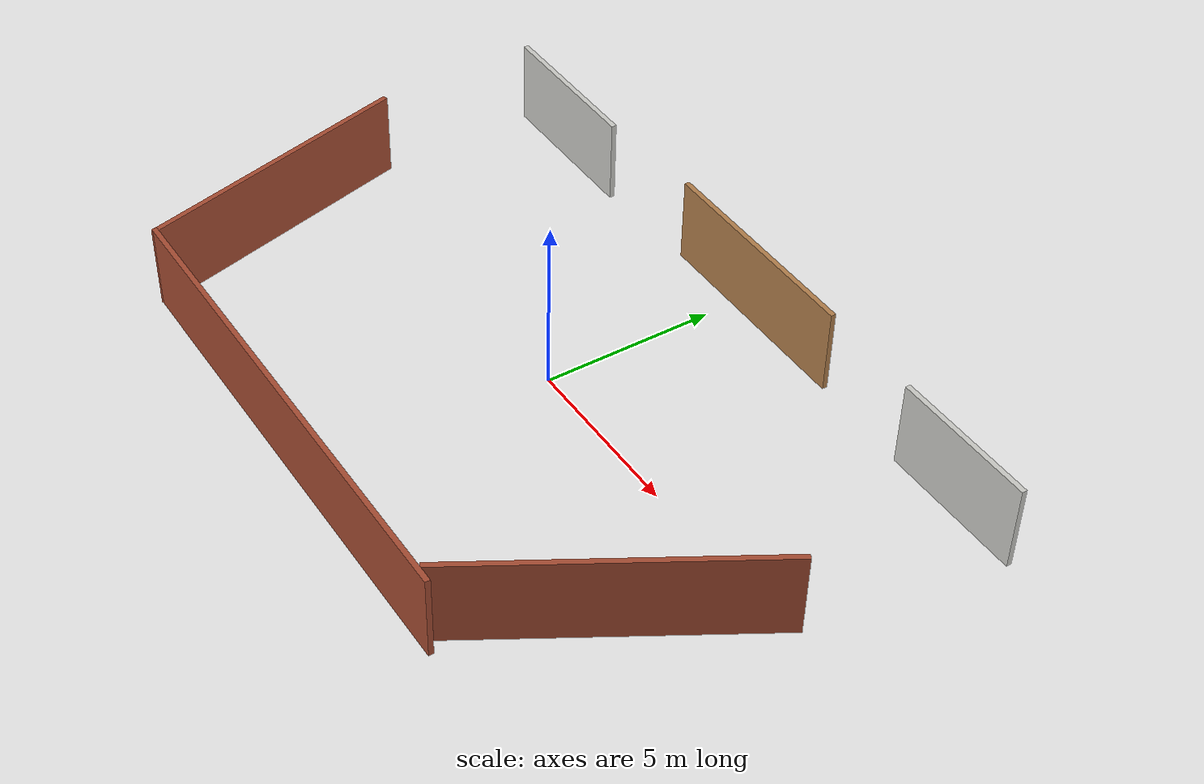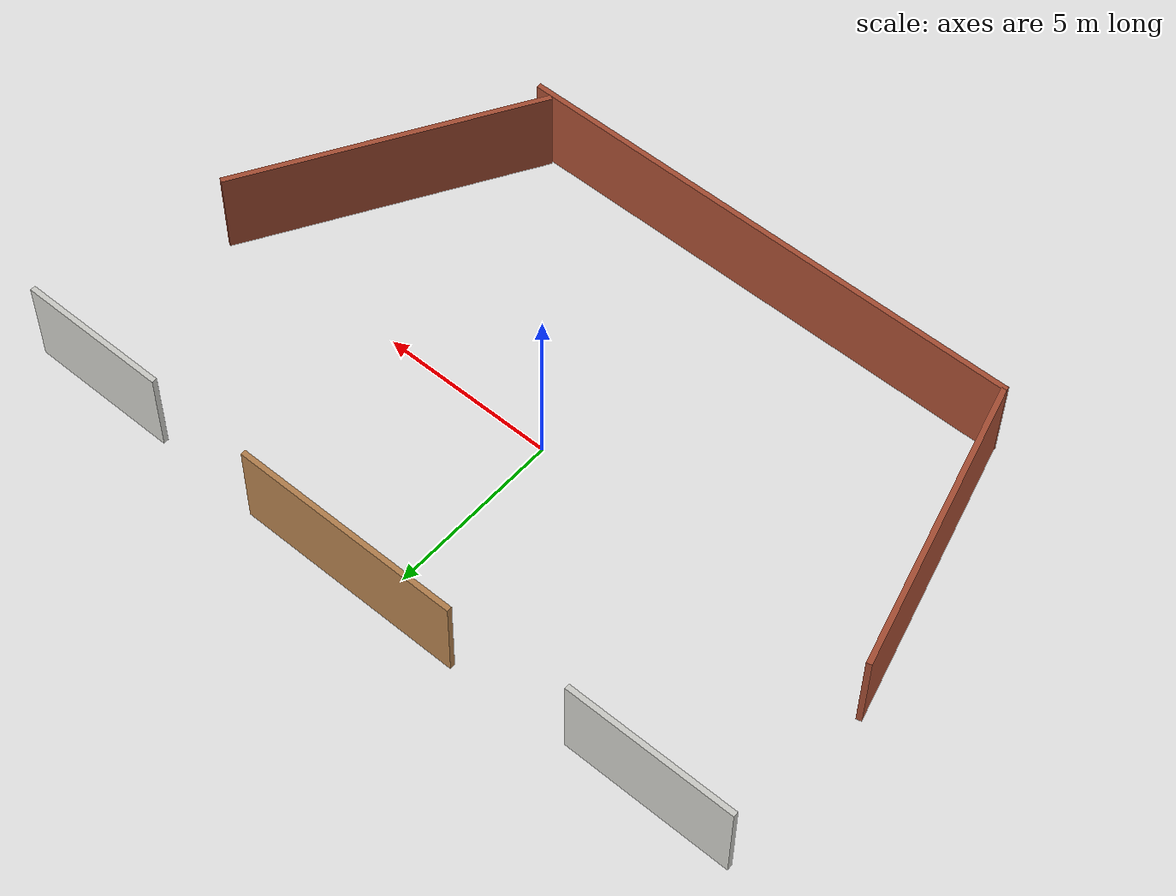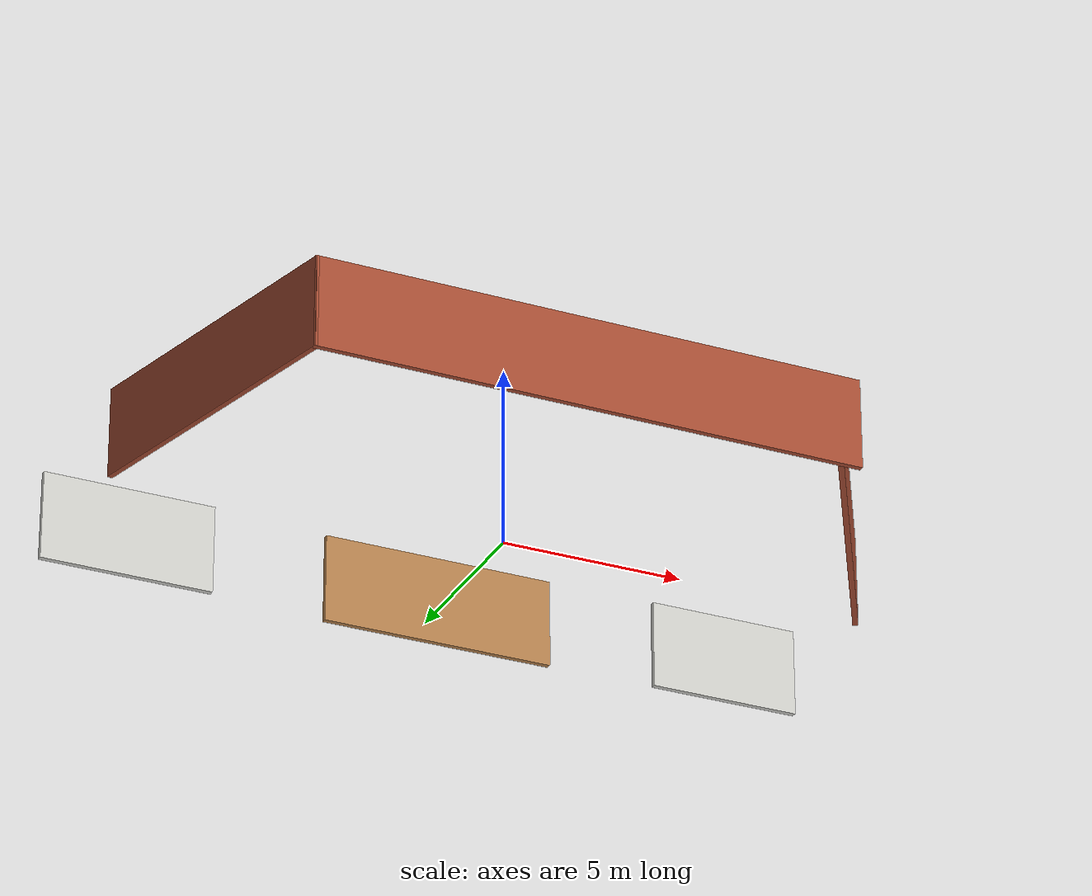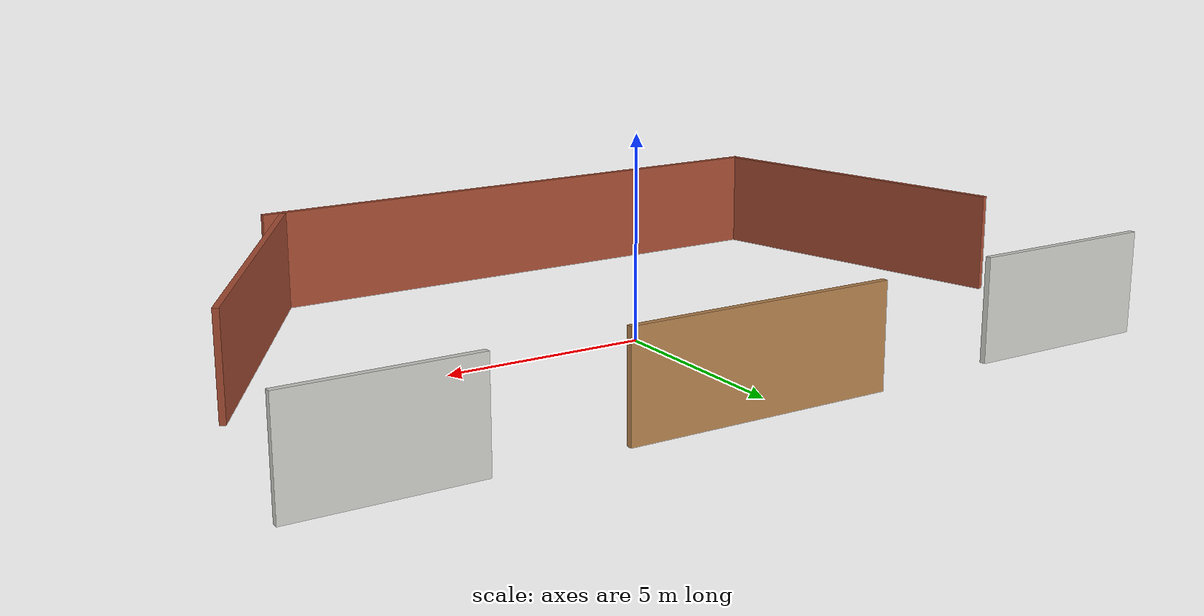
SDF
<?xml version='1.0'?>
<sdf version='1.7'>
  <model name='1100323map'>
    <pose>0.418099 -0.642201 0 0 -0 0</pose>
    <link name='Wall_12'>
      <collision name='Wall_12_Collision'>
        <geometry>
          <box>
            <size>14.75 0.15 2.5</size>
          </box>
        </geometry>
        <pose>0 0 1.25 0 -0 0</pose>
      </collision>
      <visual name='Wall_12_Visual'>
        <pose>0 0 1.25 0 -0 0</pose>
        <geometry>
          <box>
            <size>14.75 0.15 2.5</size>
          </box>
        </geometry>
        <material>
          <script>
            <uri>file://media/materials/scripts/gazebo.material</uri>
            <name>Gazebo/Bricks</name>
          </script>
          <ambient>1 1 1 1</ambient>
        </material>
        <meta>
          <layer>0</layer>
        </meta>
      </visual>
      <pose>-1.29934 -6.58583 0 0 -0 3.14159</pose>
    </link>
    <link name='Wall_13'>
      <collision name='Wall_13_Collision'>
        <geometry>
          <box>
            <size>8.5 0.15 2.5</size>
          </box>
        </geometry>
        <pose>0 0 1.25 0 -0 0</pose>
      </collision>
      <visual name='Wall_13_Visual'>
        <pose>0 0 1.25 0 -0 0</pose>
        <geometry>
          <box>
            <size>8.5 0.15 2.5</size>
          </box>
        </geometry>
        <material>
          <script>
            <uri>file://media/materials/scripts/gazebo.material</uri>
            <name>Gazebo/Bricks</name>
          </script>
          <ambient>1 1 1 1</ambient>
        </material>
        <meta>
          <layer>0</layer>
        </meta>
      </visual>
      <pose>-9.67991 -2.55309 0 0 -0 1.8326</pose>
    </link>
    <link name='Wall_15'>
      <collision name='Wall_15_Collision'>
        <geometry>
          <box>
            <size>4.75 0.15 2.5</size>
          </box>
        </geometry>
        <pose>0 0 1.25 0 -0 0</pose>
      </collision>
      <visual name='Wall_15_Visual'>
        <pose>0 0 1.25 0 -0 0</pose>
        <geometry>
          <box>
            <size>4.75 0.15 2.5</size>
          </box>
        </geometry>
        <material>
          <script>
            <uri>file://media/materials/scripts/gazebo.material</uri>
            <name>Gazebo/CeilingTiled</name>
          </script>
          <ambient>1 1 1 1</ambient>
        </material>
        <meta>
          <layer>0</layer>
        </meta>
      </visual>
      <pose>-8.52886 6.35995 0 0 -0 0</pose>
    </link>
    <link name='Wall_17'>
      <collision name='Wall_17_Collision'>
        <geometry>
          <box>
            <size>6.5 0.15 2.5</size>
          </box>
        </geometry>
        <pose>0 0 1.25 0 -0 0</pose>
      </collision>
      <visual name='Wall_17_Visual'>
        <pose>0 0 1.25 0 -0 0</pose>
        <geometry>
          <box>
            <size>6.5 0.15 2.5</size>
          </box>
        </geometry>
        <material>
          <script>
            <uri>file://media/materials/scripts/gazebo.material</uri>
            <name>Gazebo/Wood</name>
          </script>
          <ambient>1 1 1 1</ambient>
        </material>
        <meta>
          <layer>0</layer>
        </meta>
      </visual>
      <pose>0.356344 6.60269 0 0 -0 0</pose>
    </link>
    <link name='Wall_19'>
      <collision name='Wall_19_Collision'>
        <geometry>
          <box>
            <size>4.25 0.15 2.5</size>
          </box>
        </geometry>
        <pose>0 0 1.25 0 -0 0</pose>
      </collision>
      <visual name='Wall_19_Visual'>
        <pose>0 0 1.25 0 -0 0</pose>
        <geometry>
          <box>
            <size>4.25 0.15 2.5</size>
          </box>
        </geometry>
        <material>
          <script>
            <uri>file://media/materials/scripts/gazebo.material</uri>
            <name>Gazebo/CeilingTiled</name>
          </script>
          <ambient>1 1 1 1</ambient>
        </material>
        <meta>
          <layer>0</layer>
        </meta>
      </visual>
      <pose>8.77886 6.52178 0 0 -0 0</pose>
    </link>
    <link name='Wall_21'>
      <collision name='Wall_21_Collision'>
        <geometry>
          <box>
            <size>8.75 0.15 2.5</size>
          </box>
        </geometry>
        <pose>0 0 1.25 0 -0 0</pose>
      </collision>
      <visual name='Wall_21_Visual'>
        <pose>0 0 1.25 0 -0 0</pose>
        <geometry>
          <box>
            <size>8.75 0.15 2.5</size>
          </box>
        </geometry>
        <material>
          <script>
            <uri>file://media/materials/scripts/gazebo.material</uri>
            <name>Gazebo/Bricks</name>
          </script>
          <ambient>1 1 1 1</ambient>
        </material>
        <meta>
          <layer>0</layer>
        </meta>
      </visual>
      <pose>7.7461 -2.7001 0 0 -0 1.0472</pose>
    </link>
    <static>1</static>
  </model>
</sdf>
